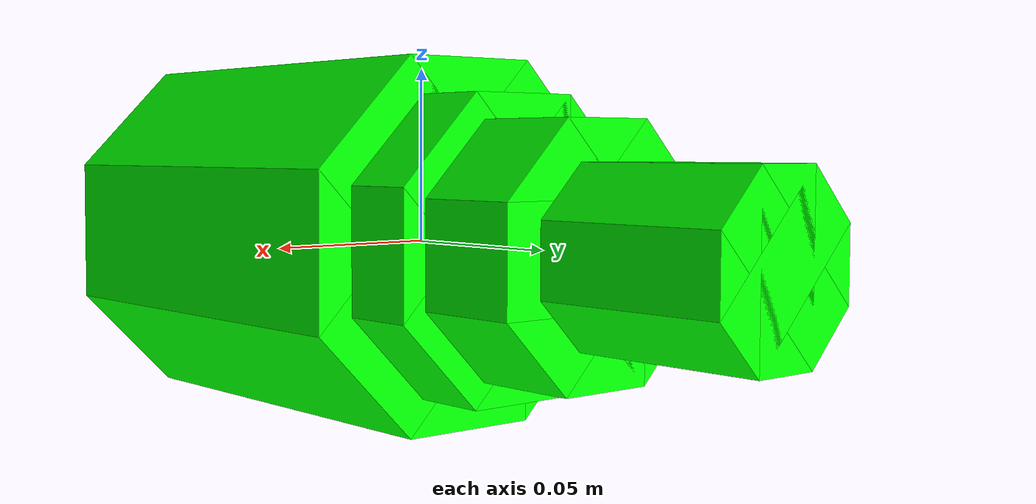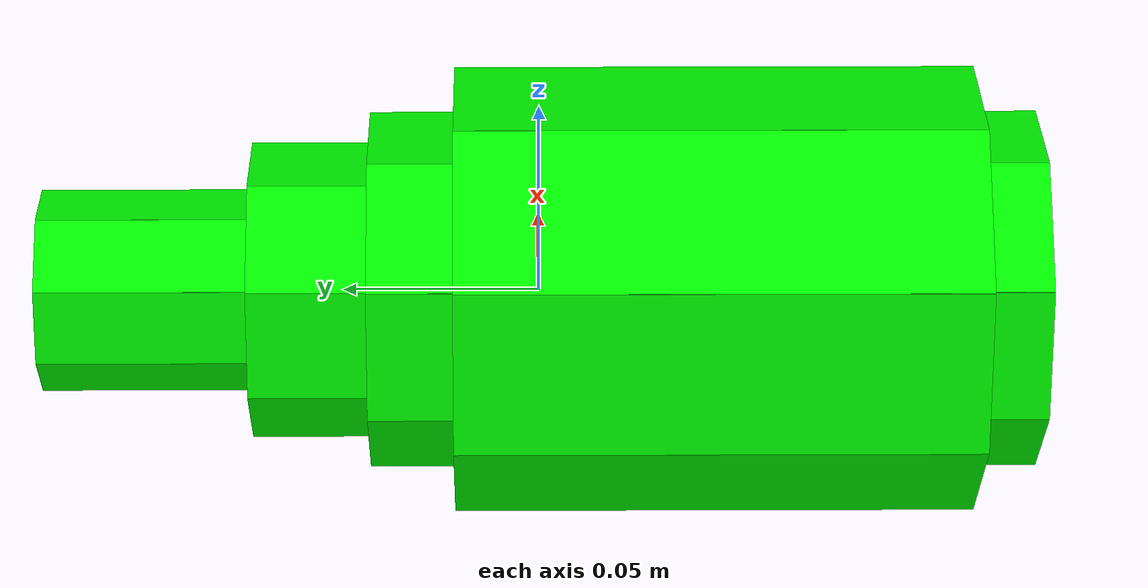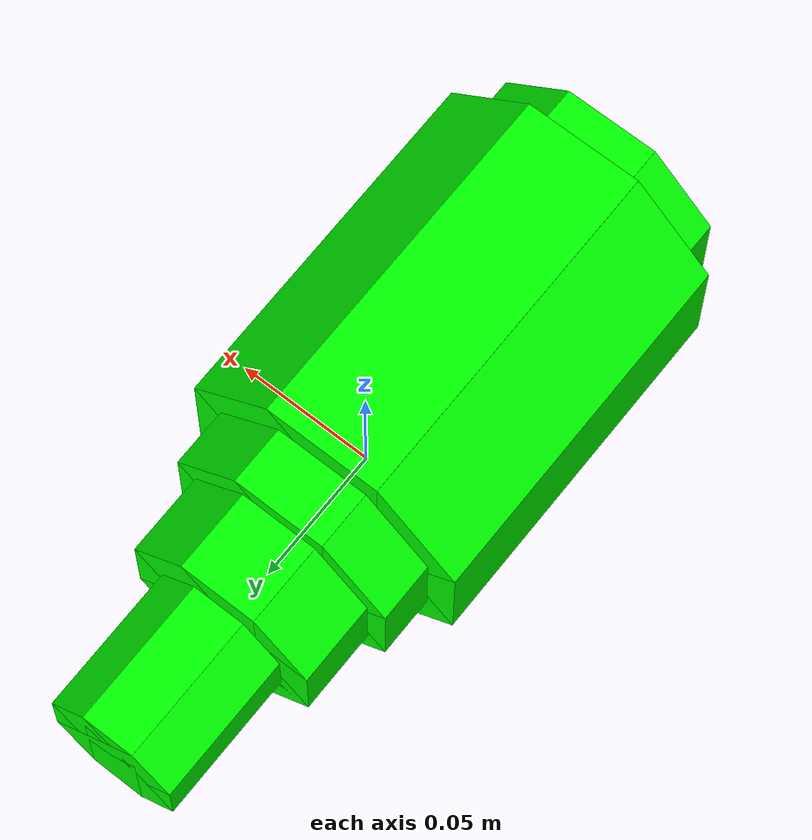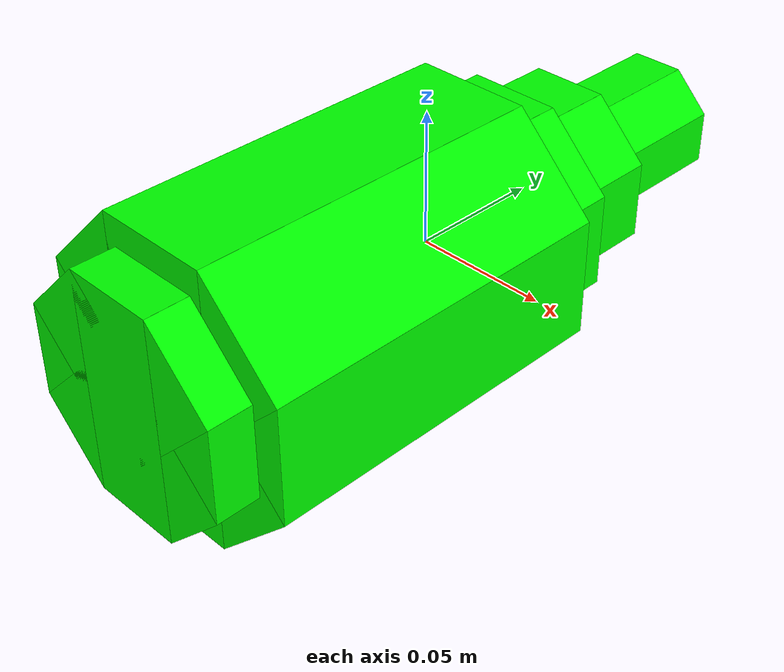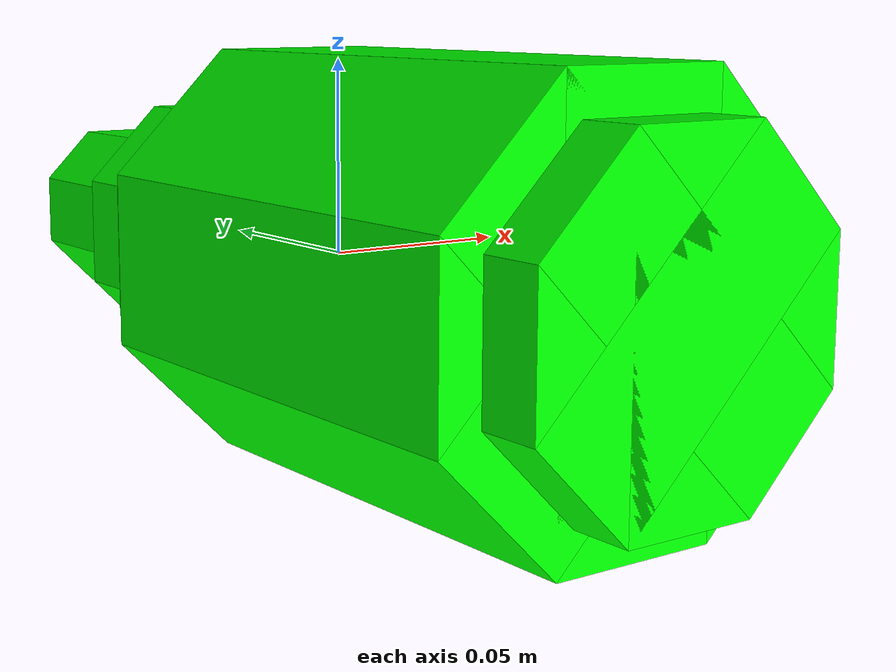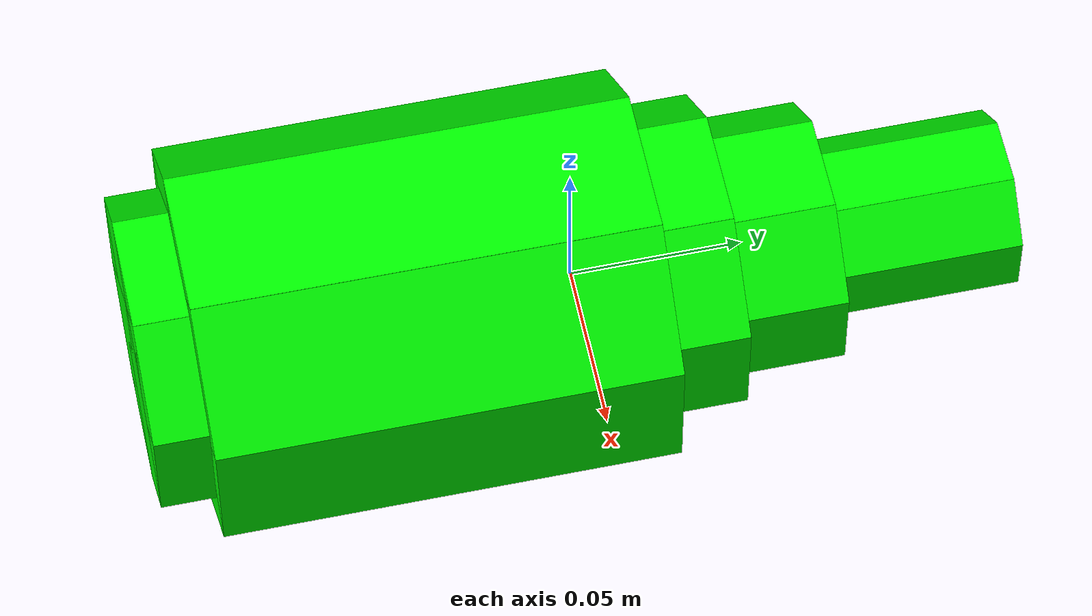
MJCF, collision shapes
<mujoco model="Bottle_1">
  <compiler angle="radian" />
  <default>
    <default class="/">
      <default class="__VISUAL_MJT__">
        <geom contype="0" conaffinity="0" />
      </default>
      <default class="__STRUCTURAL_MJT__">
        <geom contype="8" conaffinity="15" group="4" friction="0.9 0.9 0.001" solref="0.025" solimp="0.998 0.998" />
      </default>
      <default class="__DYNAMIC_MJT__">
        <geom conaffinity="15" group="4" friction="0.9 0.9 0.001" solref="0.025" solimp="0.998 0.998" />
      </default>
    </default>
  </default>
  <asset>
    <material name="material_Glass_Detailed_White_Mat" class="/" rgba="0.921569 0.988235 1.000000 1.000000" metallic="0.000000" roughness="0.020000" clearcoat="0.25" clearcoatroughness="0.05" transmission="1.00" thickness="0.002" ior="1.50" />
    <mesh name="Bottle_1_bottle_1" class="/" content_type="model/obj" file="assets/Bottle_1_bottle_1/Bottle_1_bottle_1.obj" />
  </asset>
  <worldbody>
    <body name="Bottle_1">
      <joint name="Bottle_1_free" class="/" type="free" limited="false" actuatorfrclimited="false" damping="0.1" />
      <geom name="Bottle_1_bottle_1" class="__VISUAL_MJT__" type="mesh" material="material_Glass_Detailed_White_Mat" mesh="Bottle_1_bottle_1" pos="0 -0.12669 0" mass="0"/>
      <geom name="Bottle_1_bottle_1_PrimitiveCollider_0" class="__DYNAMIC_MJT__" size="0.0417788 0.0848904 0.0172831" pos="0 -0.0418675 0" type="box" rgba="0 1 0 1" density="200"/>
      <geom name="Bottle_1_bottle_1_PrimitiveCollider_1" class="__DYNAMIC_MJT__" size="0.0417799 0.0848909 0.0172836" pos="0 -0.0418679 0" quat="0.707108 0 0.707106 0" type="box" rgba="0 1 0 1" density="200"/>
      <geom name="Bottle_1_bottle_1_PrimitiveCollider_2" class="__DYNAMIC_MJT__" size="0.0417799 0.0848909 0.0172836" pos="0 -0.0418679 0" quat="0.92388 0 0.382683 0" type="box" rgba="0 1 0 1" density="200"/>
      <geom name="Bottle_1_bottle_1_PrimitiveCollider_3" class="__DYNAMIC_MJT__" size="0.0417799 0.0848909 0.0172836" pos="0 -0.0418679 0" quat="0.382685 0 0.923879 0" type="box" rgba="0 1 0 1" density="200"/>
      <geom name="Bottle_1_bottle_1_PrimitiveCollider_4" class="__DYNAMIC_MJT__" size="0.0523213 0.0661989 0.0216444" pos="0 -0.0447045 0" type="box" rgba="0 1 0 1" density="200"/>
      <geom name="Bottle_1_bottle_1_PrimitiveCollider_5" class="__DYNAMIC_MJT__" size="0.0523213 0.0661995 0.0216444" pos="0 -0.044705 0" quat="0.707108 0 0.707106 0" type="box" rgba="0 1 0 1" density="200"/>
      <geom name="Bottle_1_bottle_1_PrimitiveCollider_6" class="__DYNAMIC_MJT__" size="0.0523213 0.0661995 0.0216444" pos="0 -0.044705 0" quat="0.92388 0 0.382683 0" type="box" rgba="0 1 0 1" density="200"/>
      <geom name="Bottle_1_bottle_1_PrimitiveCollider_7" class="__DYNAMIC_MJT__" size="0.0523213 0.0661995 0.0216444" pos="0 -0.044705 0" quat="0.382685 0 0.923879 0" type="box" rgba="0 1 0 1" density="200"/>
      <geom name="Bottle_1_bottle_1_PrimitiveCollider_8" class="__DYNAMIC_MJT__" size="0.0236474 0.0275119 0.00978252" pos="0 0.099244 0" type="box" rgba="0 1 0 1" density="200"/>
      <geom name="Bottle_1_bottle_1_PrimitiveCollider_9" class="__DYNAMIC_MJT__" size="0.0236474 0.0275123 0.00978253" pos="0 0.099244 0" quat="0.707108 0 0.707106 0" type="box" rgba="0 1 0 1" density="200"/>
      <geom name="Bottle_1_bottle_1_PrimitiveCollider_10" class="__DYNAMIC_MJT__" size="0.0236474 0.0275123 0.00978252" pos="0 0.099244 0" quat="0.92388 0 0.382683 0" type="box" rgba="0 1 0 1" density="200"/>
      <geom name="Bottle_1_bottle_1_PrimitiveCollider_11" class="__DYNAMIC_MJT__" size="0.0236474 0.0275123 0.00978253" pos="0 0.099244 0" quat="0.382685 0 0.923879 0" type="box" rgba="0 1 0 1" density="200"/>
      <geom name="Bottle_1_bottle_1_PrimitiveCollider_12" class="__DYNAMIC_MJT__" size="0.0346492 0.0161207 0.0143337" pos="0 0.056959 0" type="box" rgba="0 1 0 1" density="200"/>
      <geom name="Bottle_1_bottle_1_PrimitiveCollider_13" class="__DYNAMIC_MJT__" size="0.0346492 0.0161207 0.0143338" pos="0 0.056959 0" quat="0.707108 0 0.707106 0" type="box" rgba="0 1 0 1" density="200"/>
      <geom name="Bottle_1_bottle_1_PrimitiveCollider_14" class="__DYNAMIC_MJT__" size="0.0346492 0.0161207 0.0143337" pos="0 0.056959 0" quat="0.92388 0 0.382683 0" type="box" rgba="0 1 0 1" density="200"/>
      <geom name="Bottle_1_bottle_1_PrimitiveCollider_15" class="__DYNAMIC_MJT__" size="0.0346492 0.0161207 0.0143338" pos="0 0.056959 0" quat="0.382685 0 0.923879 0" type="box" rgba="0 1 0 1" density="200"/>
    </body>
  </worldbody>
  <keyframe>
    <key name="Standing" qpos="0 0 0.132 0.707107 0.707107 0 0" />
    <key name="Lying on side" qpos="0 0 0.058 1 0 0 0" />
  </keyframe>
</mujoco>
